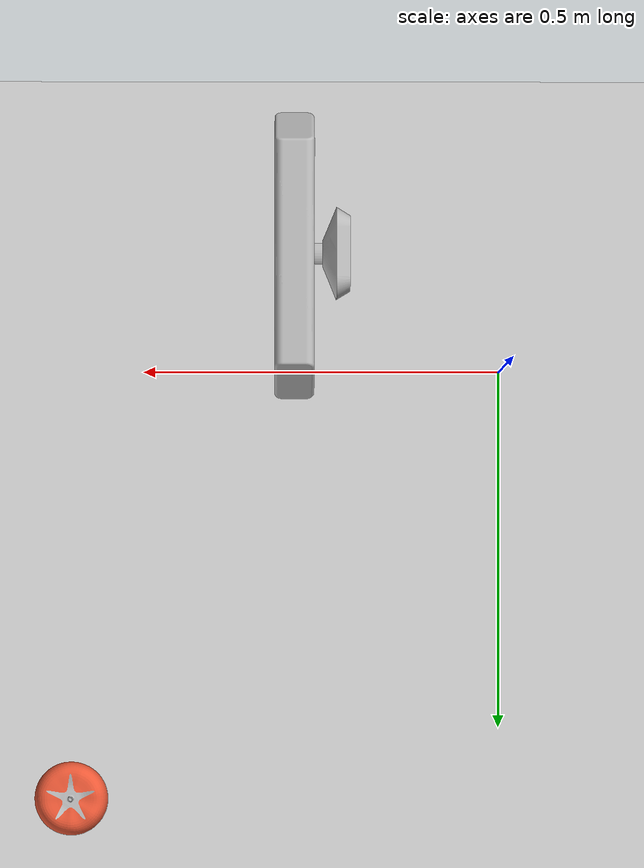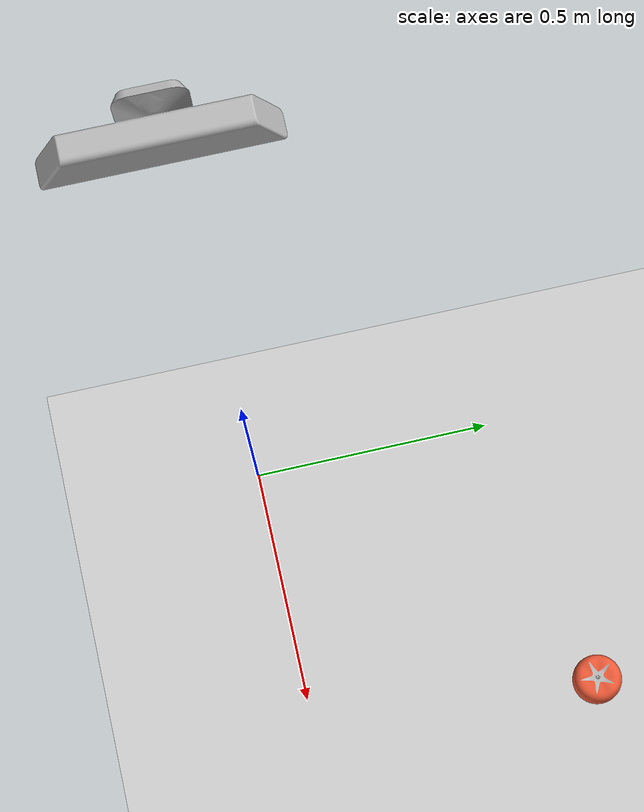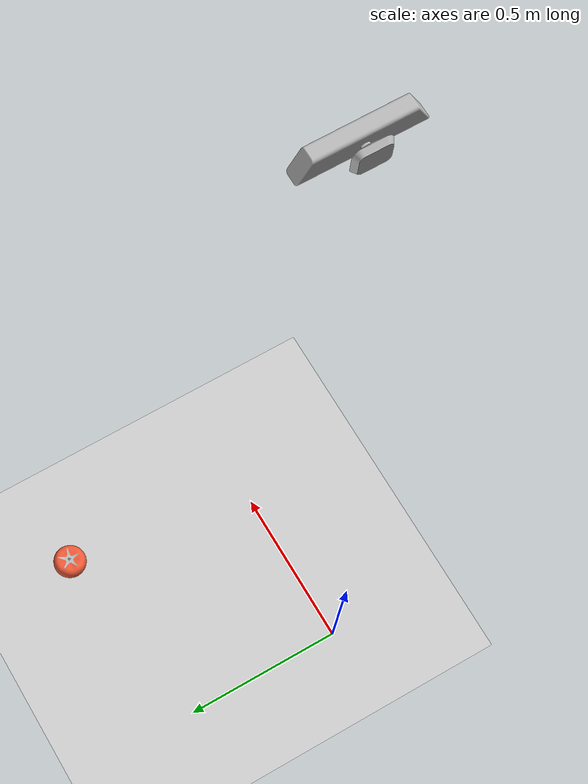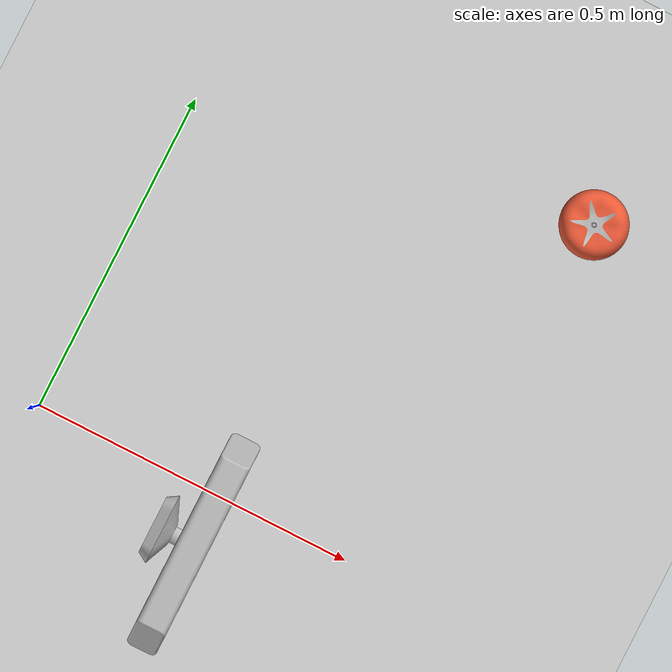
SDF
<?xml version="1.0" ?>
<sdf version="1.4">
  <!-- We use a custom world for the rrbot so that the camera angle is launched correctly -->

  <world name="default">
    <include>
      <uri>model://ground_plane</uri>
    </include>

    <!-- Global light source -->
    <include>
      <uri>model://sun</uri>
    </include>

      <!-- Tomato 1 pos  -->
    <include>
        <static>true</static>
        <pose> 0.6 0.6 0.0 0 0 0</pose>
        <uri>model://tomato</uri>
    </include>

      <!-- A kinect camera placed over the workspace pos 0 0.8 2.5 0 1.57 0 -->
      <include>
        <static>true</static>
        <pose>0.3 0.0 2.5 0 1.57 0</pose>
        <uri>model://kinect_ros</uri>
      </include>

    <!-- Focus camera on tall pendulum -->
    <gui fullscreen='0'>
      <camera name='user_camera'>
        <pose>4.927360 -4.376610 3.740080 0.000000 0.275643 2.356190</pose>
        <view_controller>orbit</view_controller>
      </camera>
    </gui>

  </world>
</sdf>

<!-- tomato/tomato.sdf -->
<sdf version="1.5">
  <model name="tomato">
    <static>true</static>
    <link name="chair_link">
        <collision name="chair_collision">
         <geometry>
            <box>
                <size>0.01 0.01 0.01</size>
            </box>
        </geometry>
      </collision>

      <visual name="chair_mesh">
        <cast_shadows>true</cast_shadows>
        <geometry>
            <mesh>
                <uri>model://tomato/meshes/model.dae</uri>
            </mesh>
        </geometry>
      </visual>
    </link>
  </model>
</sdf>

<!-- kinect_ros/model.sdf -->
<sdf version="1.5">
  <model name="kinect_ros">
    <pose>0 0 0.036 0 0 0</pose>
    <link name="link">
      <inertial>
        <mass>0.1</mass>
      </inertial>
      <collision name="collision">
        <geometry>
          <box>
            <size>0.073000 0.276000 0.072000</size>
          </box>
        </geometry>
      </collision>
      <visual name="visual">
        <geometry>
          <mesh>
            <uri>model://kinect/meshes/kinect.dae</uri>
          </mesh>
        </geometry>
      </visual>
      <sensor name="camera" type="depth">
        <update_rate>20</update_rate>
        <camera>
          <horizontal_fov>1.047198</horizontal_fov>
          <image>
            <width>640</width>
            <height>480</height>
            <format>R8G8B8</format>
          </image>
          <clip>
            <near>0.05</near>
            <far>3</far>
          </clip>
        </camera>

        <plugin name="camera_plugin" filename="libgazebo_ros_openni_kinect.so">
          <baseline>0.2</baseline>
          <alwaysOn>true</alwaysOn>
          <updateRate>0.0</updateRate>
          <cameraName>camera_ir</cameraName>
          <imageTopicName>/camera/depth/image_raw</imageTopicName>
          <cameraInfoTopicName>/camera/depth/camera_info</cameraInfoTopicName>
          <depthImageTopicName>/camera/depth/image_raw</depthImageTopicName>
          <depthImageInfoTopicName>/camera/depth/camera_info</depthImageInfoTopicName>
          <pointCloudTopicName>/camera/depth/points</pointCloudTopicName>
          <frameName>camera_link</frameName>
          <pointCloudCutoff>0.05</pointCloudCutoff>
          <distortionK1>0</distortionK1>
          <distortionK2>0</distortionK2>
          <distortionK3>0</distortionK3>
          <distortionT1>0</distortionT1>
          <distortionT2>0</distortionT2>
          <CxPrime>0</CxPrime>
          <Cx>0</Cx>
          <Cy>0</Cy>
          <focalLength>0</focalLength>
          <hackBaseline>0</hackBaseline>
        </plugin>

      </sensor>
    </link>
  </model>
</sdf>
